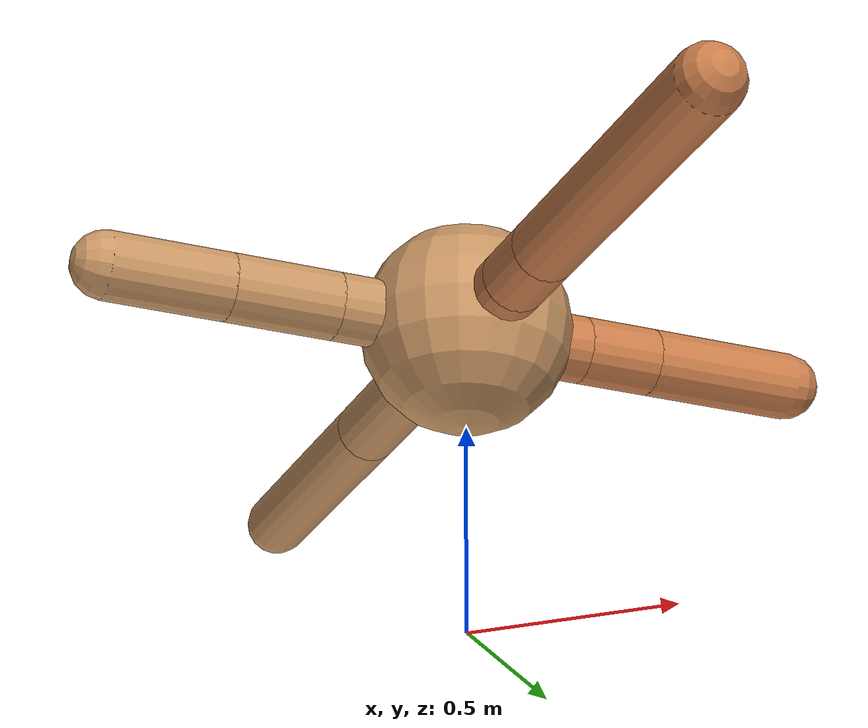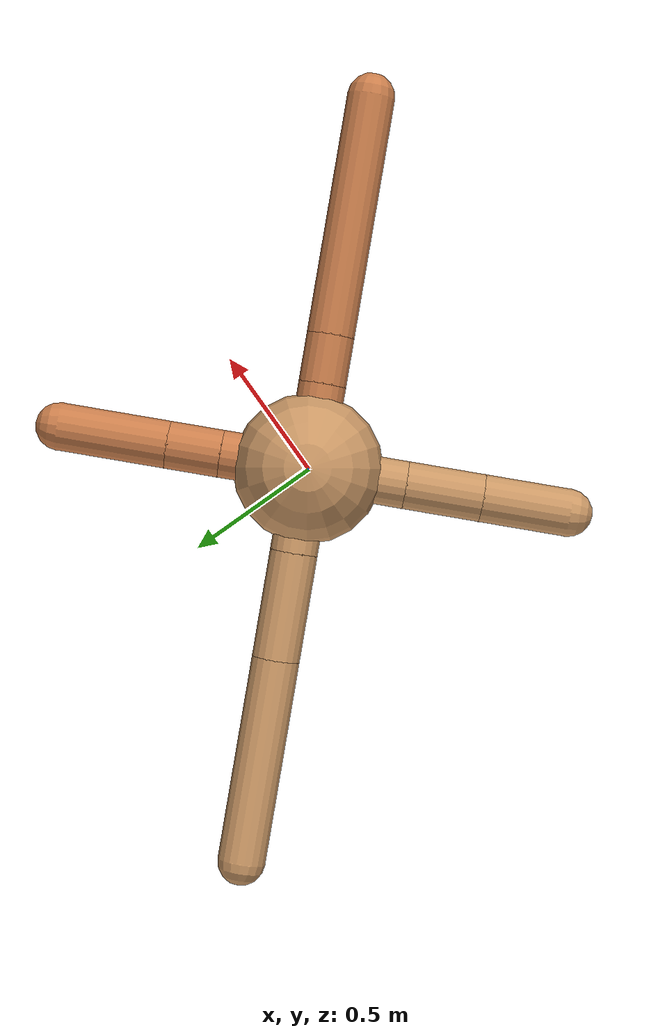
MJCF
<mujoco model="ant">
  <compiler angle="degree" coordinate="local" inertiafromgeom="true" />
  <option integrator="RK4" timestep="0.01" />
  <custom>
    <numeric data="0.0 0.0 0.55 1.0 0.0 0.0 0.0 0.0 1.0 0.0 -1.0 0.0 -1.0 0.0 1.0" name="init_qpos" />
  </custom>
  <default>
    <joint armature="1" damping="1" limited="true" />
    <geom conaffinity="0" condim="3" density="5.0" friction="1.5 0.1 0.1" margin="0.01" rgba="0.8 0.6 0.4 1" />
  </default>
  <worldbody>
    <body name="torso" pos="0 0 0.75">
      <geom name="torso_geom" pos="0 0 0" size="0.25" type="sphere" />

      <body name="front_left_leg" pos="0 0 0">
        <geom fromto="0.0 0.0 0.0 0.20707586412413806 0.20707586412413806 0.0" name="aux_1_geom" size="0.08" type="capsule" rgba=".8 .5 .3 1" />
        <body name="aux_1" pos="0.20707586412413806 0.20707586412413806 0.0">
          <joint axis="0 0 1" name="hip_1" pos="0.0 0.0 0.0" range="-40 40" type="hinge" />
          <geom fromto="0.0 0.0 0.0 0.1267572510305823 0.1267572510305823 0.0" name="left_leg_geom" size="0.08" type="capsule" rgba=".8 .5 .3 1" />
          <body pos="0.1267572510305823 0.1267572510305823 0.0" name="front_left_foot">
            <joint axis="-1 1 0" name="ankle_1" pos="0.0 0.0 0.0" range="30 100" type="hinge" />
            <geom fromto="0.0 0.0 0.0 0.2577554471091676 0.2577554471091676 0.0" name="left_ankle_geom" size="0.08" type="capsule" rgba=".8 .5 .3 1" />
          </body>
        </body>
      </body>
      <body name="front_right_leg" pos="0 0 0">
        <geom fromto="0.0 0.0 0.0 -0.2 0.2 0.0" name="aux_2_geom" size="0.08" type="capsule" />
        <body name="aux_2" pos="-0.2 0.2 0.0">
          <joint axis="0 0 1" name="hip_2" pos="0.0 0.0 0.0" range="-40 40" type="hinge" />
          <geom fromto="0.0 0.0 0.0 -0.25359064716898505 0.25359064716898505 0.0" name="right_leg_geom" size="0.08" type="capsule" />
          <body pos="-0.25359064716898505 0.25359064716898505 0.0" name="front_right_foot">
            <joint axis="1 1 0" name="ankle_2" pos="0.0 0.0 0.0" range="-100 -30" type="hinge" />
            <geom fromto="0.0 0.0 0.0 -0.48128187473731887 0.48128187473731887 0.0" name="right_ankle_geom" size="0.08" type="capsule" />
          </body>
        </body>
      </body>
      <body name="left_back_leg" pos="0 0 0">
        <geom fromto="0.0 0.0 0.0 -0.23141510685153782 -0.23141510685153782 0.0" name="aux_3_geom" size="0.08" type="capsule" />
        <body name="aux_3" pos="-0.23141510685153782 -0.23141510685153782 0.0">
          <joint axis="0 0 1" name="hip_3" pos="0.0 0.0 0.0" range="-40 40" type="hinge" />
          <geom fromto="0.0 0.0 0.0 -0.18224106076837465 -0.18224106076837465 0.0" name="back_leg_geom" size="0.08" type="capsule" />
          <body pos="-0.18224106076837465 -0.18224106076837465 0.0" name="left_back_foot">
            <joint axis="-1 1 0" name="ankle_3" pos="0.0 0.0 0.0" range="-100 -30" type="hinge" />
            <geom fromto="0.0 0.0 0.0 -0.20596134180178982 -0.20596134180178982 0.0" name="third_ankle_geom" size="0.08" type="capsule" />
          </body>
        </body>
      </body>
      <body name="right_back_leg" pos="0 0 0">
        <geom fromto="0.0 0.0 0.0 0.2 -0.2 0.0" name="aux_4_geom" size="0.08" type="capsule" rgba=".8 .5 .3 1" />
        <body name="aux_4" pos="0.2 -0.2 0.0">
          <joint axis="0 0 1" name="hip_4" pos="0.0 0.0 0.0" range="-40 40" type="hinge" />
          <geom fromto="0.0 0.0 0.0 0.11640472349567715 -0.11640472349567715 0.0" name="rightback_leg_geom" size="0.08" type="capsule" rgba=".8 .5 .3 1" />
          <body pos="0.11640472349567715 -0.11640472349567715 0.0" name="right_back_foot">
            <joint axis="1 1 0" name="ankle_4" pos="0.0 0.0 0.0" range="30 100" type="hinge" />
            <geom fromto="0.0 0.0 0.0 0.568033745745256 -0.568033745745256 0.0" name="fourth_ankle_geom" size="0.08" type="capsule" rgba=".8 .5 .3 1" />
          </body>
        </body>
      </body>
    </body>
  </worldbody>
  <actuator>
    <motor ctrllimited="true" ctrlrange="-1.0 1.0" joint="hip_4" gear="150" />
    <motor ctrllimited="true" ctrlrange="-1.0 1.0" joint="ankle_4" gear="150" />
    <motor ctrllimited="true" ctrlrange="-1.0 1.0" joint="hip_1" gear="150" />
    <motor ctrllimited="true" ctrlrange="-1.0 1.0" joint="ankle_1" gear="150" />
    <motor ctrllimited="true" ctrlrange="-1.0 1.0" joint="hip_2" gear="150" />
    <motor ctrllimited="true" ctrlrange="-1.0 1.0" joint="ankle_2" gear="150" />
    <motor ctrllimited="true" ctrlrange="-1.0 1.0" joint="hip_3" gear="150" />
    <motor ctrllimited="true" ctrlrange="-1.0 1.0" joint="ankle_3" gear="150" />
  </actuator>
</mujoco>
